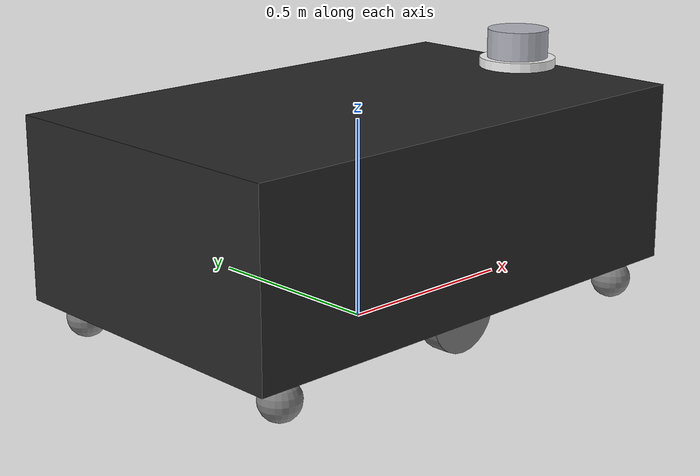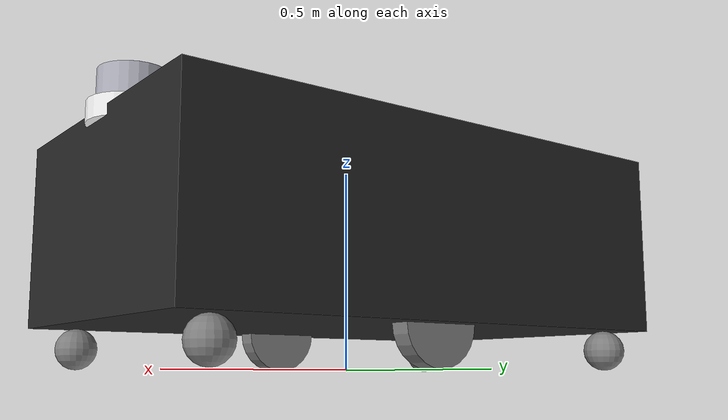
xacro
<?xml version="1.0" ?>
<robot name="karakuri" xmlns:xacro="http://ros.org/wiki/xacro">

<xacro:property name="box_length" value="1.33"/>
<xacro:property name="box_width" value="0.82"/>
<xacro:property name="box_heigh" value="0.45"/>
<xacro:property name="sphere_wheel_radius" value="0.05"/>
<xacro:property name="wheel_radius" value="0.1"/>
<xacro:property name="wheel_length" value="0.05"/>

<xacro:property name="wheel_smoothly" value="0.0"/>

<xacro:include filename="common_materials.xacro" />

<xacro:macro name="edge_wheel_link" params="prefix">
    <link name="${prefix}_wheel_link">
        <visual>
            <origin xyz="0 0 ${sphere_wheel_radius}" rpy="0 0 0"/>
            <geometry>
                <sphere radius="${sphere_wheel_radius}"/>
            </geometry>
            <material name="gray"/>
        </visual>

        <collision>
            <origin xyz="0 0 ${sphere_wheel_radius}" rpy="0 0 0"/>
            <geometry>
                <sphere radius="${sphere_wheel_radius}"/>
            </geometry>
        </collision>

        <xacro:sphere_inertia m="0.01" r="${sphere_wheel_radius}" o_xyz="0 0 ${sphere_wheel_radius}" o_rpy="0 0 0" />
    </link>
</xacro:macro>

<xacro:macro name="middle_wheel_link" params="prefix">
    <link name="${prefix}_wheel_link">
        <visual>
            <origin xyz="0 0 0" rpy="${pi / 2} 0 0"/>
            <geometry>
                <cylinder radius="${wheel_radius}" length="${wheel_length}"/>
            </geometry>
            <material name="gray"/>
        </visual>

        <collision>
            <geometry>
                <sphere radius="${wheel_radius}" />
            </geometry>
            <origin xyz="0 0 0" rpy="0 0 0" />
        </collision>

        <xacro:cylinder_inertia m="1.0" r="${wheel_radius}" h="${wheel_length}" o_xyz="0 0 0" o_rpy="${pi / 2} 0 0"></xacro:cylinder_inertia>

    </link>
</xacro:macro>

<link name="base_link">
    <visual>
        <origin xyz="0 0 ${box_heigh / 2}" rpy="0 0 0"/>
        <geometry>
            <box size="${box_length} ${box_width} ${box_heigh}"/>
        </geometry>
        <material name="graphite_black"/>
    </visual>

    <collision>
        <origin xyz="0 0 ${box_heigh / 2}" rpy="0 0 0"/>
        <geometry>
            <box size="${box_length} ${box_width} ${box_heigh}"/>
        </geometry>
    </collision>

    <xacro:box_inertia m="5.0" x="${box_length}" y="${box_width}" z="${box_heigh}"
                           o_xyz="0 0 ${box_heigh / 2}" o_rpy="0 0 0" />
</link>

<link name="lidar_base_link">
    <visual>
        <origin xyz="0 0 0" rpy="0 0 0"/>
        <geometry>
            <cylinder radius="0.1" length="0.05"/>
        </geometry>
        <material name="pearl_white"/>
    </visual>

    <collision>
        <origin xyz="0 0 0" rpy="0 0 0"/>
        <geometry>
            <cylinder radius="0.1" length="0.05"/>
        </geometry>
    </collision>

    <xacro:cylinder_inertia m="0.5" r="0.1" h="0.05" o_xyz="0 0 0" o_rpy="0 0 0"></xacro:cylinder_inertia>

 </link>

 <link name="lidar_top_link">
    <visual>
        <origin xyz="0 0 0" rpy="0 0 0"/>
        <geometry>
            <cylinder radius="0.08" length="0.1"/>
        </geometry>
        <material name="metallic_silver"/>
    </visual>

    <collision>
        <origin xyz="0 0 0" rpy="0 0 0"/>
        <geometry>
            <cylinder radius="0.09" length="0.1"/>
        </geometry>
    </collision>

    <xacro:cylinder_inertia m="0.5" r="0.1" h="0.05" o_xyz="0 0 0" o_rpy="0 0 0"></xacro:cylinder_inertia>

 </link>

<link name="base_footprint"> </link>

<xacro:edge_wheel_link prefix="right_up"/>
<xacro:edge_wheel_link prefix="right_down"/>
<xacro:edge_wheel_link prefix="left_up"/>
<xacro:edge_wheel_link prefix="left_down"/>

<xacro:middle_wheel_link prefix="right"/>
<xacro:middle_wheel_link prefix="left"/>

<joint name="empty_base" type="fixed">
    <parent link="base_footprint"/>
    <child link="base_link"/>
    <origin xyz="0 0 0.1" rpy="0 0 0"/>
</joint>

<joint name="base_lidar_base_joint" type="fixed">
    <parent link="base_link" ></parent>
    <child link="lidar_base_link"></child>
    <origin xyz="${(box_length/2) - 0.08} 0 ${box_heigh}" rpy="0 0 ${pi}"></origin>
    <axis xyz="0 1 0"></axis>
</joint>

<joint name="base_lidar_top_lidar_joint" type="fixed">
    <parent link="lidar_base_link" ></parent>
    <child link="lidar_top_link"></child>
    <origin xyz="0 0 0.05" rpy="0 0 0"></origin>
    <axis xyz="0 1 0"></axis>
</joint>

<joint name="base_middle_wheel_left_joint" type="continuous">
    <parent link="base_link"></parent>
    <child link="left_wheel_link"></child>
    <origin xyz="0  ${-((box_width / 2) * 0.8)} 0" rpy="0 0 ${pi}"></origin>
    <axis xyz="0 1 0"></axis>
</joint>

<joint name="base_middle_wheel_right_joint" type="continuous">
    <parent link="base_link"></parent>
    <child link="right_wheel_link"></child>
    <origin xyz="0 ${((box_width / 2) * 0.8)} 0" rpy="0 0 ${pi}"></origin>
    <axis xyz="0 1 0"></axis>
</joint>

<joint name="base_right_up_wheel_joint" type="fixed">
    <parent link="base_link" ></parent>
    <child link="right_up_wheel_link"></child>
    <origin xyz="${(box_length / 2) * 0.85} ${ -((box_width / 2) * 0.85) } ${-(sphere_wheel_radius * 2)}" rpy="0 0 0"></origin>
    <axis xyz="0 1 0"></axis>
</joint>

<joint name="base_right_down_wheel_joint" type="fixed">
    <parent link="base_link" ></parent>
    <child link="right_down_wheel_link"></child>
    <origin xyz="${-((box_length / 2) * 0.85)} ${ -((box_width / 2) * 0.85) } ${-(sphere_wheel_radius * 2)}" rpy="0 0 0"></origin>
    <axis xyz="0 1 0"></axis>
</joint>

<joint name="base_left_up_wheel_joint" type="fixed">
    <parent link="base_link" ></parent>
    <child link="left_up_wheel_link"></child>
    <origin xyz="${ ((box_length / 2) * 0.85)} ${ ((box_width / 2) * 0.85) } ${-(sphere_wheel_radius * 2)}" rpy="0 0 0"></origin>
    <axis xyz="0 1 0"></axis>
</joint>

<joint name="base_left_down_wheel_joint" type="fixed">
    <parent link="base_link" ></parent>
    <child link="left_down_wheel_link"></child>
    <origin xyz="${ -((box_length / 2) * 0.85)} ${ ((box_width / 2) * 0.85) } ${-(sphere_wheel_radius * 2)}" rpy="0 0 0"></origin>
    <axis xyz="0 1 0"></axis>
</joint>

<gazebo>
    <plugin
        filename="gz-sim-sensors-system"
        name="gz::sim::systems::Sensors">
        <render_engine>ogre2</render_engine>
    </plugin>
</gazebo>

<gazebo reference="right_up_wheel_link">
    <mu1 value="${wheel_smoothly}" />
    <mu2 value="${wheel_smoothly}" />
</gazebo>

<gazebo reference="right_down_wheel_link">
    <mu1 value="${wheel_smoothly}" />
    <mu2 value="${wheel_smoothly}" />
</gazebo>

<gazebo reference="left_up_wheel_link">
    <mu1 value="${wheel_smoothly}" />
    <mu2 value="${wheel_smoothly}" />
</gazebo>

<gazebo reference="left_down_wheel_link">
    <mu1 value="${wheel_smoothly}" />
    <mu2 value="${wheel_smoothly}" />
</gazebo>

<gazebo>
    <plugin
        filename="gz-sim-diff-drive-system"
        name="gz::sim::systems::DiffDrive">
        <left_joint>base_middle_wheel_left_joint</left_joint>
        <right_joint>base_middle_wheel_right_joint</right_joint>
        <wheel_separation>0.71</wheel_separation>
        <wheel_radius>0.1</wheel_radius>
        <frame_id>odom</frame_id>
        <child_frame_id>base_footprint</child_frame_id>
    </plugin>
</gazebo>

<gazebo reference="lidar_top_link">
    <sensor name="lidar" type="gpu_lidar">
        <always_on>true</always_on>
        <visualize>true</visualize>
        <topic>scan</topic>
        <update_rate>15</update_rate> <!-- 10–20 Hz typical -->
        <gz_frame_id>lidar_top_link</gz_frame_id>
        <lidar>
            <scan>
                <horizontal>
                    <samples>720</samples> <!-- Angular resolution ~0.5° -->
                    <resolution>1.0</resolution>
                    <min_angle>-3.14</min_angle>
                    <max_angle>3.14</max_angle>
                </horizontal>
            </scan>
            <range>
                <min>0.2</min>           <!-- Min range of RPLIDAR A3 -->
                <max>25.0</max>          <!-- Max range under ideal conditions -->
                <resolution>0.01</resolution>
            </range>
            <noise>
                <type>gaussian</type>
                <mean>0.0</mean>
                <stddev>0.005</stddev>   <!-- A3 has relatively low noise -->
            </noise>
        </lidar>
    </sensor>
</gazebo>

<gazebo>
    <plugin
        filename="gz-sim-joint-state-publisher-system"
        name="gz::sim::systems::JointStatePublisher">
    </plugin>
</gazebo>

</robot>

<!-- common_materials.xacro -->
<robot  xmlns:xacro="http://ros.org/wiki/xacro">

<material name="jet_black">
  <color rgba="0.05 0.05 0.05 1"/>
</material>

<material name="pearl_white">
  <color rgba="0.95 0.95 0.95 1"/>
</material>

<material name="midnight_blue">
  <color rgba="0.1 0.1 0.3 1"/>
</material>

<material name="metallic_silver">
  <color rgba="0.7 0.7 0.75 1"/>
</material>

<material name="carbon_grey">
  <color rgba="0.3 0.3 0.3 1"/>
</material>

<material name="racing_red">
  <color rgba="0.7 0.0 0.0 1"/>
</material>

<material name="sky_blue">
  <color rgba="0.4 0.6 0.9 1"/>
</material>

<material name="sunset_orange">
  <color rgba="1.0 0.4 0.0 1"/>
</material>

<material name="forest_green">
  <color rgba="0.1 0.4 0.1 1"/>
</material>

<material name="champagne_gold">
  <color rgba="0.9 0.8 0.6 1"/>
</material>

<material name="steel_blue">
  <color rgba="0.4 0.5 0.6 1"/>
</material>

<material name="lava_red">
  <color rgba="0.6 0.1 0.1 1"/>
</material>

<material name="desert_sand">
  <color rgba="0.76 0.7 0.5 1"/>
</material>

<material name="lime_green">
  <color rgba="0.5 0.8 0.2 1"/>
</material>

<material name="turquoise">
  <color rgba="0.25 0.88 0.82 1"/>
</material>

<material name="graphite_black">
  <color rgba="0.15 0.15 0.15 1"/>
</material>

<material name="copper_bronze">
  <color rgba="0.72 0.45 0.2 1"/>
</material>

<material name="deep_purple">
  <color rgba="0.4 0.2 0.6 1"/>
</material>

<material name="frost_blue">
  <color rgba="0.75 0.85 0.95 1"/>
</material>

<material name="matte_green">
  <color rgba="0.2 0.4 0.2 1"/>
</material>

<material name="red">
  <color rgba="1 0 0 1"/>
</material>

<material name="green">
  <color rgba="0 1 0 1"/>
</material>

<material name="blue">
  <color rgba="0 0 1 1"/>
</material>

<material name="yellow">
  <color rgba="1 1 0 1"/>
</material>

<material name="cyan">
  <color rgba="0 1 1 1"/>
</material>

<material name="magenta">
  <color rgba="1 0 1 1"/>
</material>

<material name="white">
  <color rgba="1 1 1 1"/>
</material>

<material name="black">
  <color rgba="0 0 0 1"/>
</material>

<material name="gray">
  <color rgba="0.5 0.5 0.5 1"/>
</material>

<material name="orange">
  <color rgba="1 0.5 0 1"/>
</material>

    <xacro:macro name="box_inertia" params="m x y z o_xyz o_rpy">
        <inertial>
            <mass value="${m}" />
            <origin xyz="${o_xyz}" rpy="${o_rpy}" />
            <inertia ixx="${(m/12) * (y*y + z*z)}" ixy="0" ixz="0"
                     iyy="${(m/12) * (x*x + z*z)}" iyz="0"
                     izz="${(m/12) * (x*x + y*y)}" />
        </inertial>
    </xacro:macro>

    <xacro:macro name="cylinder_inertia" params="m r h o_xyz o_rpy">
        <inertial>
            <mass value="${m}"/>
            <origin xyz="${o_xyz}" rpy="${o_rpy}"/>
            <inertia ixx="${(1.0/12.0)*m*(3*r*r + h*h)}" ixy="0.0" ixz="0.0"
                    iyy="${(1.0/12.0)*m*(3*r*r + h*h)}" iyz="0.0"
                    izz="${0.5*m*r*r}"/>
        </inertial>
    </xacro:macro>

    <xacro:macro name="sphere_inertia" params="m r o_xyz o_rpy">
        <inertial>
            <origin xyz="${o_xyz}" rpy="${o_rpy}"/>
            <mass value="${m}"/>
            <inertia ixx="${(2.0/5.0)*m*r*r}" ixy="0.0" ixz="0.0"
                        iyy="${(2.0/5.0)*m*r*r}" iyz="0.0"
                        izz="${(2.0/5.0)*m*r*r}"/>
        </inertial>
    </xacro:macro>

</robot>
